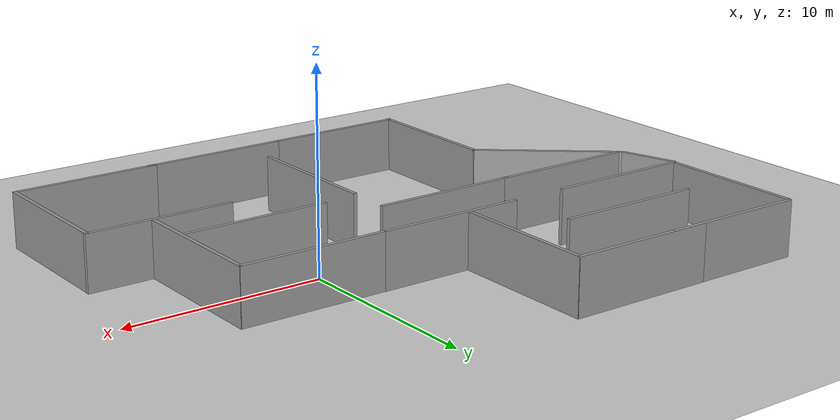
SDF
<sdf version="1.6">
 <world name="default">
  <light name="sun" type="directional">
   <pose>0 0 10 0 -0 0</pose>
   <diffuse>0.8 0.8 0.8 1</diffuse>
   <specular>0.2 0.2 0.2 1</specular>
   <attenuation>
    <range>1000</range>
    <constant>0.9</constant>
    <linear>0.01</linear>
    <quadratic>0.001</quadratic>
   </attenuation>
   <direction>-0.5 0.1 -0.9</direction>
  </light>
  <model name="ground_plane">
   <static>1</static>
   <link name="link">
    <collision name="collision">
     <geometry><plane><normal>0 0 1</normal><size>100 100</size></plane></geometry>
     <surface>
      <contact><collide_bitmask>65535</collide_bitmask></contact>
      <friction><ode><mu>100</mu><mu2>50</mu2></ode></friction>
     </surface>
    </collision>
    <visual name="visual">
     <cast_shadows>0</cast_shadows>
     <geometry><plane><normal>0 0 1</normal><size>100 100</size></plane></geometry>
     <material>
      <script><uri>file://media/materials/scripts/gazebo.material</uri><name>Gazebo/Grey</name></script>
     </material>
    </visual>
   </link>
  </model>
  <gravity>0 0 -9.8</gravity>
  <magnetic_field>6e-06 2.3e-05 -4.2e-05</magnetic_field>
  <atmosphere type="adiabatic"/>
  <physics name="default_physics" default="0" type="ode">
   <max_step_size>0.001</max_step_size>
   <real_time_factor>1</real_time_factor>
   <real_time_update_rate>1000</real_time_update_rate>
  </physics>
  <scene><ambient>0.4 0.4 0.4 1</ambient><background>0.7 0.7 0.7 1</background><shadows>1</shadows></scene>
  <spherical_coordinates>
   <surface_model>EARTH_WGS84</surface_model>
   <latitude_deg>0</latitude_deg>
   <longitude_deg>0</longitude_deg>
   <elevation>0</elevation>
   <heading_deg>0</heading_deg>
  </spherical_coordinates>
  <model name="grey_wall">
   <static>1</static>
   <link name="link">
    <pose>0 0 1.4 0 -0 0</pose>
    <collision name="collision"><geometry><box><size>7.5 0.2 2.8</size></box></geometry></collision>
    <visual name="visual">
     <cast_shadows>0</cast_shadows>
     <geometry><box><size>7.5 0.2 2.8</size></box></geometry>
     <material>
      <script>
       <uri>model://grey_wall/materials/scripts</uri>
       <uri>model://grey_wall/materials/textures</uri>
       <name>vrc/grey_wall</name>
      </script>
     </material>
    </visual>
   </link>
   <pose>2 -2 0 0 -0 0</pose>
  </model>
  <model name="grey_wall_clone">
   <static>1</static>
   <link name="link">
    <pose>0 0 1.4 0 -0 0</pose>
    <collision name="collision"><geometry><box><size>7.5 0.2 2.8</size></box></geometry></collision>
    <visual name="visual">
     <cast_shadows>0</cast_shadows>
     <geometry><box><size>7.5 0.2 2.8</size></box></geometry>
     <material>
      <script>
       <uri>model://grey_wall/materials/scripts</uri>
       <uri>model://grey_wall/materials/textures</uri>
       <name>vrc/grey_wall</name>
      </script>
     </material>
    </visual>
   </link>
   <pose>2.16767 2.89928 0 0 -0 0</pose>
  </model>
  <model name="grey_wall_clone_0">
   <link name="link">
    <pose>0 0 1.4 0 -0 1.5708</pose>
    <inertial>
     <mass>1</mass>
     <inertia><ixx>1</ixx><ixy>0</ixy><ixz>0</ixz><iyy>1</iyy><iyz>0</iyz><izz>1</izz></inertia>
    </inertial>
    <visual name="visual">
     <cast_shadows>0</cast_shadows>
     <geometry><box><size>7.5 0.2 2.8</size></box></geometry>
     <material>
      <script>
       <uri>model://grey_wall/materials/scripts</uri>
       <uri>model://grey_wall/materials/textures</uri>
       <name>vrc/grey_wall</name>
      </script>
      <shader type="pixel"><normal_map>__default__</normal_map></shader>
      <ambient>1 1 1 1</ambient>
      <diffuse>1 1 1 1</diffuse>
      <specular>0 0 0 1</specular>
      <emissive>0 0 0 1</emissive>
     </material>
    </visual>
    <collision name="collision">
     <geometry><box><size>7.5 0.2 2.8</size></box></geometry>
     <surface>
      <friction>
       <ode><mu>1</mu><mu2>1</mu2><fdir1>0 0 0</fdir1><slip1>0</slip1><slip2>0</slip2></ode>
       <torsional>
        <coefficient>1</coefficient>
        <patch_radius>0</patch_radius>
        <surface_radius>0</surface_radius>
        <use_patch_radius>1</use_patch_radius>
        <ode><slip>0</slip></ode>
       </torsional>
      </friction>
      <bounce><restitution_coefficient>0</restitution_coefficient><threshold>1e+06</threshold></bounce>
      <contact>
       <collide_without_contact>0</collide_without_contact>
       <collide_without_contact_bitmask>1</collide_without_contact_bitmask>
       <collide_bitmask>1</collide_bitmask>
       <ode>
        <soft_cfm>0</soft_cfm>
        <soft_erp>0.2</soft_erp>
        <kp>1e+13</kp>
        <kd>1</kd>
        <max_vel>0.01</max_vel>
        <min_depth>0</min_depth>
       </ode>
       <bullet>
        <split_impulse>1</split_impulse>
        <split_impulse_penetration_threshold>-0.01</split_impulse_penetration_threshold>
        <soft_cfm>0</soft_cfm>
        <soft_erp>0.2</soft_erp>
        <kp>1e+13</kp>
        <kd>1</kd>
       </bullet>
      </contact>
     </surface>
    </collision>
   </link>
   <static>1</static>
   <pose>5.83743 -0.761283 0 0 -0 0</pose>
  </model>
  <model name="grey_wall_clone_1">
   <static>1</static>
   <link name="link">
    <pose>0 0 1.4 0 -0 0</pose>
    <collision name="collision"><geometry><box><size>7.5 0.2 2.8</size></box></geometry></collision>
    <visual name="visual">
     <cast_shadows>0</cast_shadows>
     <geometry><box><size>7.5 0.2 2.8</size></box></geometry>
     <material>
      <script>
       <uri>model://grey_wall/materials/scripts</uri>
       <uri>model://grey_wall/materials/textures</uri>
       <name>vrc/grey_wall</name>
      </script>
     </material>
    </visual>
   </link>
   <pose>-5.25405 2.91356 0 0 -0 0</pose>
  </model>
  <model name="grey_wall_clone_2">
   <static>1</static>
   <link name="link">
    <pose>0 0 1.4 0 -0 0</pose>
    <collision name="collision"><geometry><box><size>7.5 0.2 2.8</size></box></geometry></collision>
    <visual name="visual">
     <cast_shadows>0</cast_shadows>
     <geometry><box><size>7.5 0.2 2.8</size></box></geometry>
     <material>
      <script>
       <uri>model://grey_wall/materials/scripts</uri>
       <uri>model://grey_wall/materials/textures</uri>
       <name>vrc/grey_wall</name>
      </script>
     </material>
    </visual>
   </link>
   <pose>-15.5619 2.90157 0 0 -0 0</pose>
  </model>
  <model name="grey_wall_clone_3">
   <static>1</static>
   <link name="link">
    <pose>0 0 1.4 0 -0 0</pose>
    <collision name="collision"><geometry><box><size>7.5 0.2 2.8</size></box></geometry></collision>
    <visual name="visual">
     <cast_shadows>0</cast_shadows>
     <geometry><box><size>7.5 0.2 2.8</size></box></geometry>
     <material>
      <script>
       <uri>model://grey_wall/materials/scripts</uri>
       <uri>model://grey_wall/materials/textures</uri>
       <name>vrc/grey_wall</name>
      </script>
     </material>
    </visual>
   </link>
   <pose>-7.22089 -0.034805 0 0 -0 0</pose>
  </model>
  <model name="grey_wall_clone_3_clone">
   <static>1</static>
   <link name="link">
    <pose>0 0 1.4 0 -0 0</pose>
    <collision name="collision"><geometry><box><size>7.5 0.2 2.8</size></box></geometry></collision>
    <visual name="visual">
     <cast_shadows>0</cast_shadows>
     <geometry><box><size>7.5 0.2 2.8</size></box></geometry>
     <material>
      <script>
       <uri>model://grey_wall/materials/scripts</uri>
       <uri>model://grey_wall/materials/textures</uri>
       <name>vrc/grey_wall</name>
      </script>
     </material>
    </visual>
   </link>
   <pose>-14.4575 -0.03302 0 0 -0 0</pose>
  </model>
  <model name="grey_wall_clone_0_clone">
   <link name="link">
    <pose>0 0 1.4 0 -0 1.5708</pose>
    <inertial>
     <mass>1</mass>
     <inertia><ixx>1</ixx><ixy>0</ixy><ixz>0</ixz><iyy>1</iyy><iyz>0</iyz><izz>1</izz></inertia>
    </inertial>
    <visual name="visual">
     <cast_shadows>0</cast_shadows>
     <geometry><box><size>7.5 0.2 2.8</size></box></geometry>
     <material>
      <script>
       <uri>model://grey_wall/materials/scripts</uri>
       <uri>model://grey_wall/materials/textures</uri>
       <name>vrc/grey_wall</name>
      </script>
      <shader type="pixel"><normal_map>__default__</normal_map></shader>
      <ambient>1 1 1 1</ambient>
      <diffuse>1 1 1 1</diffuse>
      <specular>0 0 0 1</specular>
      <emissive>0 0 0 1</emissive>
     </material>
    </visual>
    <collision name="collision">
     <geometry><box><size>7.5 0.2 2.8</size></box></geometry>
     <surface>
      <friction>
       <ode><mu>1</mu><mu2>1</mu2><fdir1>0 0 0</fdir1><slip1>0</slip1><slip2>0</slip2></ode>
       <torsional>
        <coefficient>1</coefficient>
        <patch_radius>0</patch_radius>
        <surface_radius>0</surface_radius>
        <use_patch_radius>1</use_patch_radius>
        <ode><slip>0</slip></ode>
       </torsional>
      </friction>
      <bounce><restitution_coefficient>0</restitution_coefficient><threshold>1e+06</threshold></bounce>
      <contact>
       <collide_without_contact>0</collide_without_contact>
       <collide_without_contact_bitmask>1</collide_without_contact_bitmask>
       <collide_bitmask>1</collide_bitmask>
       <ode>
        <soft_cfm>0</soft_cfm>
        <soft_erp>0.2</soft_erp>
        <kp>1e+13</kp>
        <kd>1</kd>
        <max_vel>0.01</max_vel>
        <min_depth>0</min_depth>
       </ode>
       <bullet>
        <split_impulse>1</split_impulse>
        <split_impulse_penetration_threshold>-0.01</split_impulse_penetration_threshold>
        <soft_cfm>0</soft_cfm>
        <soft_erp>0.2</soft_erp>
        <kp>1e+13</kp>
        <kd>1</kd>
       </bullet>
      </contact>
     </surface>
    </collision>
   </link>
   <static>1</static>
   <pose>-6.22929 6.71718 0 0 -0 0</pose>
  </model>
  <model name="grey_wall_clone_2_clone">
   <static>1</static>
   <link name="link">
    <pose>0 0 1.4 0 -0 0</pose>
    <collision name="collision"><geometry><box><size>7.5 0.2 2.8</size></box></geometry></collision>
    <visual name="visual">
     <cast_shadows>0</cast_shadows>
     <geometry><box><size>7.5 0.2 2.8</size></box></geometry>
     <material>
      <script>
       <uri>model://grey_wall/materials/scripts</uri>
       <uri>model://grey_wall/materials/textures</uri>
       <name>vrc/grey_wall</name>
      </script>
     </material>
    </visual>
   </link>
   <pose>-9.88781 10.394 0 0 -0 0</pose>
  </model>
  <model name="grey_wall_clone_2_clone_0">
   <static>1</static>
   <link name="link">
    <pose>0 0 1.4 0 -0 0</pose>
    <collision name="collision"><geometry><box><size>7.5 0.2 2.8</size></box></geometry></collision>
    <visual name="visual">
     <cast_shadows>0</cast_shadows>
     <geometry><box><size>7.5 0.2 2.8</size></box></geometry>
     <material>
      <script>
       <uri>model://grey_wall/materials/scripts</uri>
       <uri>model://grey_wall/materials/textures</uri>
       <name>vrc/grey_wall</name>
      </script>
     </material>
    </visual>
   </link>
   <pose>-15.4911 10.3877 0 0 -0 0</pose>
  </model>
  <model name="grey_wall_clone_0_clone_clone">
   <link name="link">
    <pose>0 0 1.4 0 -0 1.5708</pose>
    <inertial>
     <mass>1</mass>
     <inertia><ixx>1</ixx><ixy>0</ixy><ixz>0</ixz><iyy>1</iyy><iyz>0</iyz><izz>1</izz></inertia>
    </inertial>
    <visual name="visual">
     <cast_shadows>0</cast_shadows>
     <geometry><box><size>7.5 0.2 2.8</size></box></geometry>
     <material>
      <script>
       <uri>model://grey_wall/materials/scripts</uri>
       <uri>model://grey_wall/materials/textures</uri>
       <name>vrc/grey_wall</name>
      </script>
      <shader type="pixel"><normal_map>__default__</normal_map></shader>
      <ambient>1 1 1 1</ambient>
      <diffuse>1 1 1 1</diffuse>
      <specular>0 0 0 1</specular>
      <emissive>0 0 0 1</emissive>
     </material>
    </visual>
    <collision name="collision">
     <geometry><box><size>7.5 0.2 2.8</size></box></geometry>
     <surface>
      <friction>
       <ode><mu>1</mu><mu2>1</mu2><fdir1>0 0 0</fdir1><slip1>0</slip1><slip2>0</slip2></ode>
       <torsional>
        <coefficient>1</coefficient>
        <patch_radius>0</patch_radius>
        <surface_radius>0</surface_radius>
        <use_patch_radius>1</use_patch_radius>
        <ode><slip>0</slip></ode>
       </torsional>
      </friction>
      <bounce><restitution_coefficient>0</restitution_coefficient><threshold>1e+06</threshold></bounce>
      <contact>
       <collide_without_contact>0</collide_without_contact>
       <collide_without_contact_bitmask>1</collide_without_contact_bitmask>
       <collide_bitmask>1</collide_bitmask>
       <ode>
        <soft_cfm>0</soft_cfm>
        <soft_erp>0.2</soft_erp>
        <kp>1e+13</kp>
        <kd>1</kd>
        <max_vel>0.01</max_vel>
        <min_depth>0</min_depth>
       </ode>
       <bullet>
        <split_impulse>1</split_impulse>
        <split_impulse_penetration_threshold>-0.01</split_impulse_penetration_threshold>
        <soft_cfm>0</soft_cfm>
        <soft_erp>0.2</soft_erp>
        <kp>1e+13</kp>
        <kd>1</kd>
       </bullet>
      </contact>
     </surface>
    </collision>
   </link>
   <static>1</static>
   <pose>-19.2065 6.60989 0 0 -0 0</pose>
  </model>
  <model name="grey_wall_clone_clone">
   <static>1</static>
   <link name="link">
    <pose>0 0 1.4 0 -0 0</pose>
    <collision name="collision"><geometry><box><size>7.5 0.2 2.8</size></box></geometry></collision>
    <visual name="visual">
     <cast_shadows>0</cast_shadows>
     <geometry><box><size>7.5 0.2 2.8</size></box></geometry>
     <material>
      <script>
       <uri>model://grey_wall/materials/scripts</uri>
       <uri>model://grey_wall/materials/textures</uri>
       <name>vrc/grey_wall</name>
      </script>
     </material>
    </visual>
   </link>
   <pose>-12.8641 6.43112 0 0 -0 0</pose>
  </model>
  <model name="grey_wall_clone_clone_0">
   <static>1</static>
   <link name="link">
    <pose>0 0 1.4 0 -0 0</pose>
    <collision name="collision"><geometry><box><size>7.5 0.2 2.8</size></box></geometry></collision>
    <visual name="visual">
     <cast_shadows>0</cast_shadows>
     <geometry><box><size>7.5 0.2 2.8</size></box></geometry>
     <material>
      <script>
       <uri>model://grey_wall/materials/scripts</uri>
       <uri>model://grey_wall/materials/textures</uri>
       <name>vrc/grey_wall</name>
      </script>
     </material>
    </visual>
   </link>
   <pose>5.45802 -4.5838 0 0 -0 0</pose>
  </model>
  <model name="grey_wall_clone_0_clone_0">
   <link name="link">
    <pose>0 0 1.4 0 -0 1.5708</pose>
    <inertial>
     <mass>1</mass>
     <inertia><ixx>1</ixx><ixy>0</ixy><ixz>0</ixz><iyy>1</iyy><iyz>0</iyz><izz>1</izz></inertia>
    </inertial>
    <visual name="visual">
     <cast_shadows>0</cast_shadows>
     <geometry><box><size>7.5 0.2 2.8</size></box></geometry>
     <material>
      <script>
       <uri>model://grey_wall/materials/scripts</uri>
       <uri>model://grey_wall/materials/textures</uri>
       <name>vrc/grey_wall</name>
      </script>
      <shader type="pixel"><normal_map>__default__</normal_map></shader>
      <ambient>1 1 1 1</ambient>
      <diffuse>1 1 1 1</diffuse>
      <specular>0 0 0 1</specular>
      <emissive>0 0 0 1</emissive>
     </material>
    </visual>
    <collision name="collision">
     <geometry><box><size>7.5 0.2 2.8</size></box></geometry>
     <surface>
      <friction>
       <ode><mu>1</mu><mu2>1</mu2><fdir1>0 0 0</fdir1><slip1>0</slip1><slip2>0</slip2></ode>
       <torsional>
        <coefficient>1</coefficient>
        <patch_radius>0</patch_radius>
        <surface_radius>0</surface_radius>
        <use_patch_radius>1</use_patch_radius>
        <ode><slip>0</slip></ode>
       </torsional>
      </friction>
      <bounce><restitution_coefficient>0</restitution_coefficient><threshold>1e+06</threshold></bounce>
      <contact>
       <collide_without_contact>0</collide_without_contact>
       <collide_without_contact_bitmask>1</collide_without_contact_bitmask>
       <collide_bitmask>1</collide_bitmask>
       <ode>
        <soft_cfm>0</soft_cfm>
        <soft_erp>0.2</soft_erp>
        <kp>1e+13</kp>
        <kd>1</kd>
        <max_vel>0.01</max_vel>
        <min_depth>0</min_depth>
       </ode>
       <bullet>
        <split_impulse>1</split_impulse>
        <split_impulse_penetration_threshold>-0.01</split_impulse_penetration_threshold>
        <soft_cfm>0</soft_cfm>
        <soft_erp>0.2</soft_erp>
        <kp>1e+13</kp>
        <kd>1</kd>
       </bullet>
      </contact>
     </surface>
    </collision>
   </link>
   <static>1</static>
   <pose>9.09323 -8.23596 0 0 -0 0</pose>
  </model>
  <model name="grey_wall_clone_clone_0_clone">
   <static>1</static>
   <link name="link">
    <pose>0 0 1.4 0 -0 0</pose>
    <collision name="collision"><geometry><box><size>7.5 0.2 2.8</size></box></geometry></collision>
    <visual name="visual">
     <cast_shadows>0</cast_shadows>
     <geometry><box><size>7.5 0.2 2.8</size></box></geometry>
     <material>
      <script>
       <uri>model://grey_wall/materials/scripts</uri>
       <uri>model://grey_wall/materials/textures</uri>
       <name>vrc/grey_wall</name>
      </script>
     </material>
    </visual>
   </link>
   <pose>5.39071 -11.9077 0 0 -0 0</pose>
  </model>
  <model name="grey_wall_clone_clone_0_clone_0">
   <static>1</static>
   <link name="link">
    <pose>0 0 1.4 0 -0 0</pose>
    <collision name="collision"><geometry><box><size>7.5 0.2 2.8</size></box></geometry></collision>
    <visual name="visual">
     <cast_shadows>0</cast_shadows>
     <geometry><box><size>7.5 0.2 2.8</size></box></geometry>
     <material>
      <script>
       <uri>model://grey_wall/materials/scripts</uri>
       <uri>model://grey_wall/materials/textures</uri>
       <name>vrc/grey_wall</name>
      </script>
     </material>
    </visual>
   </link>
   <pose>-1.72194 -11.917 0 0 -0 0</pose>
  </model>
  <model name="grey_wall_clone_clone_0_clone_1">
   <static>1</static>
   <link name="link">
    <pose>0 0 1.4 0 -0 0</pose>
    <collision name="collision"><geometry><box><size>7.5 0.2 2.8</size></box></geometry></collision>
    <visual name="visual">
     <cast_shadows>0</cast_shadows>
     <geometry><box><size>7.5 0.2 2.8</size></box></geometry>
     <material>
      <script>
       <uri>model://grey_wall/materials/scripts</uri>
       <uri>model://grey_wall/materials/textures</uri>
       <name>vrc/grey_wall</name>
      </script>
     </material>
    </visual>
   </link>
   <pose>-8.84684 -11.9197 0 0 -0 0</pose>
  </model>
  <model name="grey_wall_clone_0_clone_1">
   <link name="link">
    <pose>0 0 1.4 0 -0 1.5708</pose>
    <inertial>
     <mass>1</mass>
     <inertia><ixx>1</ixx><ixy>0</ixy><ixz>0</ixz><iyy>1</iyy><iyz>0</iyz><izz>1</izz></inertia>
    </inertial>
    <visual name="visual">
     <cast_shadows>0</cast_shadows>
     <geometry><box><size>7.5 0.2 2.8</size></box></geometry>
     <material>
      <script>
       <uri>model://grey_wall/materials/scripts</uri>
       <uri>model://grey_wall/materials/textures</uri>
       <name>vrc/grey_wall</name>
      </script>
      <shader type="pixel"><normal_map>__default__</normal_map></shader>
      <ambient>1 1 1 1</ambient>
      <diffuse>1 1 1 1</diffuse>
      <specular>0 0 0 1</specular>
      <emissive>0 0 0 1</emissive>
     </material>
    </visual>
    <collision name="collision">
     <geometry><box><size>7.5 0.2 2.8</size></box></geometry>
     <surface>
      <friction>
       <ode><mu>1</mu><mu2>1</mu2><fdir1>0 0 0</fdir1><slip1>0</slip1><slip2>0</slip2></ode>
       <torsional>
        <coefficient>1</coefficient>
        <patch_radius>0</patch_radius>
        <surface_radius>0</surface_radius>
        <use_patch_radius>1</use_patch_radius>
        <ode><slip>0</slip></ode>
       </torsional>
      </friction>
      <bounce><restitution_coefficient>0</restitution_coefficient><threshold>1e+06</threshold></bounce>
      <contact>
       <collide_without_contact>0</collide_without_contact>
       <collide_without_contact_bitmask>1</collide_without_contact_bitmask>
       <collide_bitmask>1</collide_bitmask>
       <ode>
        <soft_cfm>0</soft_cfm>
        <soft_erp>0.2</soft_erp>
        <kp>1e+13</kp>
        <kd>1</kd>
        <max_vel>0.01</max_vel>
        <min_depth>0</min_depth>
       </ode>
       <bullet>
        <split_impulse>1</split_impulse>
        <split_impulse_penetration_threshold>-0.01</split_impulse_penetration_threshold>
        <soft_cfm>0</soft_cfm>
        <soft_erp>0.2</soft_erp>
        <kp>1e+13</kp>
        <kd>1</kd>
       </bullet>
      </contact>
     </surface>
    </collision>
   </link>
   <static>1</static>
   <pose>-12.5916 -8.31237 0 0 -0 0</pose>
  </model>
  <model name="grey_wall_clone_0_clone_2">
   <link name="link">
    <pose>0 0 1.4 0 -0 1.5708</pose>
    <inertial>
     <mass>1</mass>
     <inertia><ixx>1</ixx><ixy>0</ixy><ixz>0</ixz><iyy>1</iyy><iyz>0</iyz><izz>1</izz></inertia>
    </inertial>
    <visual name="visual">
     <cast_shadows>0</cast_shadows>
     <geometry><box><size>7.5 0.2 2.8</size></box></geometry>
     <material>
      <script>
       <uri>model://grey_wall/materials/scripts</uri>
       <uri>model://grey_wall/materials/textures</uri>
       <name>vrc/grey_wall</name>
      </script>
      <shader type="pixel"><normal_map>__default__</normal_map></shader>
      <ambient>1 1 1 1</ambient>
      <diffuse>1 1 1 1</diffuse>
      <specular>0 0 0 1</specular>
      <emissive>0 0 0 1</emissive>
     </material>
    </visual>
    <collision name="collision">
     <geometry><box><size>7.5 0.2 2.8</size></box></geometry>
     <surface>
      <friction>
       <ode><mu>1</mu><mu2>1</mu2><fdir1>0 0 0</fdir1><slip1>0</slip1><slip2>0</slip2></ode>
       <torsional>
        <coefficient>1</coefficient>
        <patch_radius>0</patch_radius>
        <surface_radius>0</surface_radius>
        <use_patch_radius>1</use_patch_radius>
        <ode><slip>0</slip></ode>
       </torsional>
      </friction>
      <bounce><restitution_coefficient>0</restitution_coefficient><threshold>1e+06</threshold></bounce>
      <contact>
       <collide_without_contact>0</collide_without_contact>
       <collide_without_contact_bitmask>1</collide_without_contact_bitmask>
       <collide_bitmask>1</collide_bitmask>
       <ode>
        <soft_cfm>0</soft_cfm>
        <soft_erp>0.2</soft_erp>
        <kp>1e+13</kp>
        <kd>1</kd>
        <max_vel>0.01</max_vel>
        <min_depth>0</min_depth>
       </ode>
       <bullet>
        <split_impulse>1</split_impulse>
        <split_impulse_penetration_threshold>-0.01</split_impulse_penetration_threshold>
        <soft_cfm>0</soft_cfm>
        <soft_erp>0.2</soft_erp>
        <kp>1e+13</kp>
        <kd>1</kd>
       </bullet>
      </contact>
     </surface>
    </collision>
   </link>
   <static>1</static>
   <pose>-3.5779 -6.01717 0 0 -0 0</pose>
  </model>
  <model name="grey_wall_clone_0_clone_1_clone">
   <link name="link">
    <pose>0 0 1.4 0 -0 1.5708</pose>
    <inertial>
     <mass>1</mass>
     <inertia><ixx>1</ixx><ixy>0</ixy><ixz>0</ixz><iyy>1</iyy><iyz>0</iyz><izz>1</izz></inertia>
    </inertial>
    <visual name="visual">
     <cast_shadows>0</cast_shadows>
     <geometry><box><size>7.5 0.2 2.8</size></box></geometry>
     <material>
      <script>
       <uri>model://grey_wall/materials/scripts</uri>
       <uri>model://grey_wall/materials/textures</uri>
       <name>vrc/grey_wall</name>
      </script>
      <shader type="pixel"><normal_map>__default__</normal_map></shader>
      <ambient>1 1 1 1</ambient>
      <diffuse>1 1 1 1</diffuse>
      <specular>0 0 0 1</specular>
      <emissive>0 0 0 1</emissive>
     </material>
    </visual>
    <collision name="collision">
     <geometry><box><size>7.5 0.2 2.8</size></box></geometry>
     <surface>
      <friction>
       <ode><mu>1</mu><mu2>1</mu2><fdir1>0 0 0</fdir1><slip1>0</slip1><slip2>0</slip2></ode>
       <torsional>
        <coefficient>1</coefficient>
        <patch_radius>0</patch_radius>
        <surface_radius>0</surface_radius>
        <use_patch_radius>1</use_patch_radius>
        <ode><slip>0</slip></ode>
       </torsional>
      </friction>
      <bounce><restitution_coefficient>0</restitution_coefficient><threshold>1e+06</threshold></bounce>
      <contact>
       <collide_without_contact>0</collide_without_contact>
       <collide_without_contact_bitmask>1</collide_without_contact_bitmask>
       <collide_bitmask>1</collide_bitmask>
       <ode>
        <soft_cfm>0</soft_cfm>
        <soft_erp>0.2</soft_erp>
        <kp>1e+13</kp>
        <kd>1</kd>
        <max_vel>0.01</max_vel>
        <min_depth>0</min_depth>
       </ode>
       <bullet>
        <split_impulse>1</split_impulse>
        <split_impulse_penetration_threshold>-0.01</split_impulse_penetration_threshold>
        <soft_cfm>0</soft_cfm>
        <soft_erp>0.2</soft_erp>
        <kp>1e+13</kp>
        <kd>1</kd>
       </bullet>
      </contact>
     </surface>
    </collision>
   </link>
   <static>1</static>
   <pose>-15.4596 -2.30695 0 0 -0 0.88679</pose>
  </model>
  <model name="grey_wall_clone_0_clone_1_clone_0">
   <link name="link">
    <pose>0 0 1.4 0 -0 1.5708</pose>
    <inertial>
     <mass>1</mass>
     <inertia><ixx>1</ixx><ixy>0</ixy><ixz>0</ixz><iyy>1</iyy><iyz>0</iyz><izz>1</izz></inertia>
    </inertial>
    <visual name="visual">
     <cast_shadows>0</cast_shadows>
     <geometry><box><size>3 0.2 2.8</size></box></geometry>
     <material>
      <script>
       <uri>model://grey_wall/materials/scripts</uri>
       <uri>model://grey_wall/materials/textures</uri>
       <name>vrc/grey_wall</name>
      </script>
      <shader type="pixel"><normal_map>__default__</normal_map></shader>
      <ambient>1 1 1 1</ambient>
      <diffuse>1 1 1 1</diffuse>
      <specular>0 0 0 1</specular>
      <emissive>0 0 0 1</emissive>
     </material>
    </visual>
    <collision name="collision">
     <geometry><box><size>7.5 0.2 2.8</size></box></geometry>
     <surface>
      <friction>
       <ode><mu>1</mu><mu2>1</mu2><fdir1>0 0 0</fdir1><slip1>0</slip1><slip2>0</slip2></ode>
       <torsional>
        <coefficient>1</coefficient>
        <patch_radius>0</patch_radius>
        <surface_radius>0</surface_radius>
        <use_patch_radius>1</use_patch_radius>
        <ode><slip>0</slip></ode>
       </torsional>
      </friction>
      <bounce><restitution_coefficient>0</restitution_coefficient><threshold>1e+06</threshold></bounce>
      <contact>
       <collide_without_contact>0</collide_without_contact>
       <collide_without_contact_bitmask>1</collide_without_contact_bitmask>
       <collide_bitmask>1</collide_bitmask>
       <ode>
        <soft_cfm>0</soft_cfm>
        <soft_erp>0.2</soft_erp>
        <kp>1e+13</kp>
        <kd>1</kd>
        <max_vel>0.01</max_vel>
        <min_depth>0</min_depth>
       </ode>
       <bullet>
        <split_impulse>1</split_impulse>
        <split_impulse_penetration_threshold>-0.01</split_impulse_penetration_threshold>
        <soft_cfm>0</soft_cfm>
        <soft_erp>0.2</soft_erp>
        <kp>1e+13</kp>
        <kd>1</kd>
       </bullet>
      </contact>
     </surface>
    </collision>
   </link>
   <static>1</static>
   <pose>-18.8362 1.45999 0 0 -0 0.30113</pose>
  </model>
  <plugin name="gazebo_occupancy_map" filename="libgazebo_2Dmap_plugin.so">
   <map_resolution>0.05</map_resolution>
   <map_height>0.3</map_height>
   <map_size_x>45</map_size_x>
   <map_size_y>45</map_size_y>
   <init_robot_x>0</init_robot_x>
   <init_robot_y>0</init_robot_y>
  </plugin>
 </world>
</sdf>
